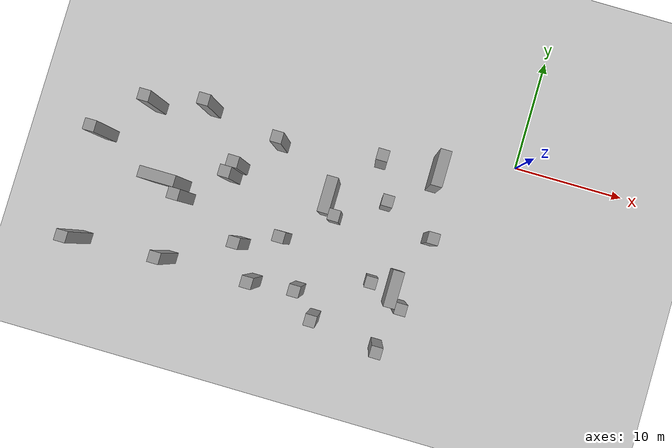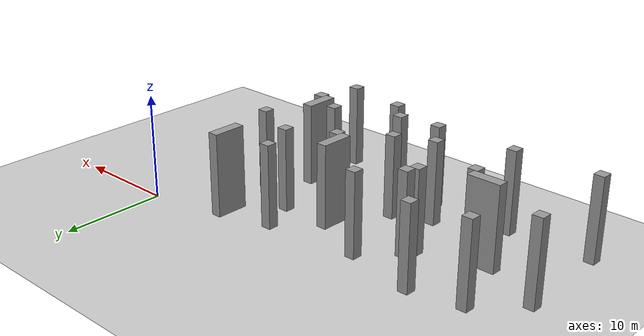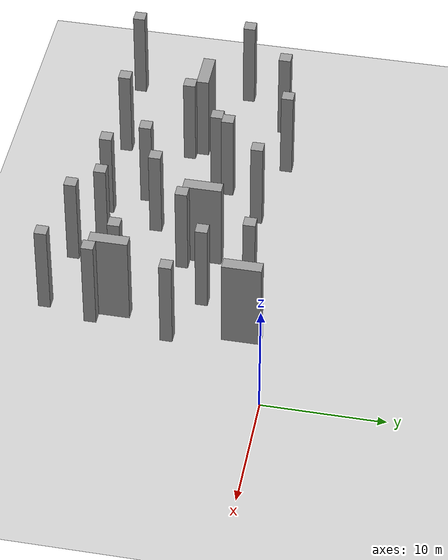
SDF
<sdf version="1.7">
 <world name="default">
  <model name="ground_plane">
   <static>1</static>
   <link name="link">
    <collision name="collision">
     <geometry><plane><normal>0 0 1</normal><size>100 100</size></plane></geometry>
     <surface>
      <contact><collide_bitmask>65535</collide_bitmask></contact>
      <friction><ode><mu>100</mu><mu2>50</mu2></ode></friction>
     </surface>
    </collision>
    <visual name="visual">
     <cast_shadows>0</cast_shadows>
     <geometry><plane><normal>0 0 1</normal><size>100 100</size></plane></geometry>
     <material>
      <script><uri>file://media/materials/scripts/gazebo.material</uri><name>Gazebo/Grey</name></script>
     </material>
    </visual>
   </link>
  </model>
  <model name="unit_box_static_clone_15">
   <link name="link">
    <inertial>
     <mass>1</mass>
     <inertia>
      <ixx>0.166667</ixx>
      <ixy>0</ixy>
      <ixz>0</ixz>
      <iyy>0.166667</iyy>
      <iyz>0</iyz>
      <izz>0.166667</izz>
     </inertia>
    </inertial>
    <visual name="visual">
     <geometry><box><size>1 1 8.00001</size></box></geometry>
     <material>
      <script><name>Gazebo/Grey</name><uri>file://media/materials/scripts/gazebo.material</uri></script>
      <shader type="pixel"/>
     </material>
    </visual>
    <collision name="collision">
     <geometry><box><size>1 1 8.00001</size></box></geometry>
     <surface>
      <friction>
       <ode><mu>1</mu><mu2>1</mu2><fdir1>0 0 0</fdir1><slip1>0</slip1><slip2>0</slip2></ode>
       <torsional>
        <coefficient>1</coefficient>
        <patch_radius>0</patch_radius>
        <surface_radius>0</surface_radius>
        <use_patch_radius>1</use_patch_radius>
        <ode><slip>0</slip></ode>
       </torsional>
      </friction>
      <bounce><restitution_coefficient>0</restitution_coefficient><threshold>1e+06</threshold></bounce>
      <contact>
       <collide_without_contact>0</collide_without_contact>
       <collide_without_contact_bitmask>1</collide_without_contact_bitmask>
       <collide_bitmask>1</collide_bitmask>
       <ode>
        <soft_cfm>0</soft_cfm>
        <soft_erp>0.2</soft_erp>
        <kp>1e+13</kp>
        <kd>1</kd>
        <max_vel>0.01</max_vel>
        <min_depth>0</min_depth>
       </ode>
       <bullet>
        <split_impulse>1</split_impulse>
        <split_impulse_penetration_threshold>-0.01</split_impulse_penetration_threshold>
        <soft_cfm>0</soft_cfm>
        <soft_erp>0.2</soft_erp>
        <kp>1e+13</kp>
        <kd>1</kd>
       </bullet>
      </contact>
     </surface>
    </collision>
   </link>
   <static>1</static>
   <pose>-14.5511 -9 4 0 -0 0</pose>
  </model>
  <model name="unit_box_static_clone_16">
   <link name="link">
    <inertial>
     <mass>1</mass>
     <inertia>
      <ixx>0.166667</ixx>
      <ixy>0</ixy>
      <ixz>0</ixz>
      <iyy>0.166667</iyy>
      <iyz>0</iyz>
      <izz>0.166667</izz>
     </inertia>
    </inertial>
    <visual name="visual">
     <geometry><box><size>1 1 8.00001</size></box></geometry>
     <material>
      <script><name>Gazebo/Grey</name><uri>file://media/materials/scripts/gazebo.material</uri></script>
      <shader type="pixel"/>
     </material>
    </visual>
    <collision name="collision">
     <geometry><box><size>1 1 8.00001</size></box></geometry>
     <surface>
      <friction>
       <ode><mu>1</mu><mu2>1</mu2><fdir1>0 0 0</fdir1><slip1>0</slip1><slip2>0</slip2></ode>
       <torsional>
        <coefficient>1</coefficient>
        <patch_radius>0</patch_radius>
        <surface_radius>0</surface_radius>
        <use_patch_radius>1</use_patch_radius>
        <ode><slip>0</slip></ode>
       </torsional>
      </friction>
      <bounce><restitution_coefficient>0</restitution_coefficient><threshold>1e+06</threshold></bounce>
      <contact>
       <collide_without_contact>0</collide_without_contact>
       <collide_without_contact_bitmask>1</collide_without_contact_bitmask>
       <collide_bitmask>1</collide_bitmask>
       <ode>
        <soft_cfm>0</soft_cfm>
        <soft_erp>0.2</soft_erp>
        <kp>1e+13</kp>
        <kd>1</kd>
        <max_vel>0.01</max_vel>
        <min_depth>0</min_depth>
       </ode>
       <bullet>
        <split_impulse>1</split_impulse>
        <split_impulse_penetration_threshold>-0.01</split_impulse_penetration_threshold>
        <soft_cfm>0</soft_cfm>
        <soft_erp>0.2</soft_erp>
        <kp>1e+13</kp>
        <kd>1</kd>
       </bullet>
      </contact>
     </surface>
    </collision>
   </link>
   <static>1</static>
   <pose>-10.537 -6.5798 4 0 -0 0</pose>
  </model>
  <model name="unit_box_static_clone_26">
   <link name="link">
    <inertial>
     <mass>1</mass>
     <inertia>
      <ixx>0.166667</ixx>
      <ixy>0</ixy>
      <ixz>0</ixz>
      <iyy>0.166667</iyy>
      <iyz>0</iyz>
      <izz>0.166667</izz>
     </inertia>
    </inertial>
    <visual name="visual">
     <geometry><box><size>1 1 8.00001</size></box></geometry>
     <material>
      <script><name>Gazebo/Grey</name><uri>file://media/materials/scripts/gazebo.material</uri></script>
      <shader type="pixel"/>
     </material>
    </visual>
    <collision name="collision">
     <geometry><box><size>1 1 8.00001</size></box></geometry>
     <surface>
      <friction>
       <ode><mu>1</mu><mu2>1</mu2><fdir1>0 0 0</fdir1><slip1>0</slip1><slip2>0</slip2></ode>
       <torsional>
        <coefficient>1</coefficient>
        <patch_radius>0</patch_radius>
        <surface_radius>0</surface_radius>
        <use_patch_radius>1</use_patch_radius>
        <ode><slip>0</slip></ode>
       </torsional>
      </friction>
      <bounce><restitution_coefficient>0</restitution_coefficient><threshold>1e+06</threshold></bounce>
      <contact>
       <collide_without_contact>0</collide_without_contact>
       <collide_without_contact_bitmask>1</collide_without_contact_bitmask>
       <collide_bitmask>1</collide_bitmask>
       <ode>
        <soft_cfm>0</soft_cfm>
        <soft_erp>0.2</soft_erp>
        <kp>1e+13</kp>
        <kd>1</kd>
        <max_vel>0.01</max_vel>
        <min_depth>0</min_depth>
       </ode>
       <bullet>
        <split_impulse>1</split_impulse>
        <split_impulse_penetration_threshold>-0.01</split_impulse_penetration_threshold>
        <soft_cfm>0</soft_cfm>
        <soft_erp>0.2</soft_erp>
        <kp>1e+13</kp>
        <kd>1</kd>
       </bullet>
      </contact>
     </surface>
    </collision>
   </link>
   <static>1</static>
   <pose>-10 -13.5446 4 0 -0 0</pose>
  </model>
  <model name="unit_box_static_clone_27">
   <link name="link">
    <inertial>
     <mass>1</mass>
     <inertia>
      <ixx>0.166667</ixx>
      <ixy>0</ixy>
      <ixz>0</ixz>
      <iyy>0.166667</iyy>
      <iyz>0</iyz>
      <izz>0.166667</izz>
     </inertia>
    </inertial>
    <visual name="visual">
     <geometry><box><size>1 1 8.00001</size></box></geometry>
     <material>
      <script><name>Gazebo/Grey</name><uri>file://media/materials/scripts/gazebo.material</uri></script>
      <shader type="pixel"/>
     </material>
    </visual>
    <collision name="collision">
     <geometry><box><size>1 1 8.00001</size></box></geometry>
     <surface>
      <friction>
       <ode><mu>1</mu><mu2>1</mu2><fdir1>0 0 0</fdir1><slip1>0</slip1><slip2>0</slip2></ode>
       <torsional>
        <coefficient>1</coefficient>
        <patch_radius>0</patch_radius>
        <surface_radius>0</surface_radius>
        <use_patch_radius>1</use_patch_radius>
        <ode><slip>0</slip></ode>
       </torsional>
      </friction>
      <bounce><restitution_coefficient>0</restitution_coefficient><threshold>1e+06</threshold></bounce>
      <contact>
       <collide_without_contact>0</collide_without_contact>
       <collide_without_contact_bitmask>1</collide_without_contact_bitmask>
       <collide_bitmask>1</collide_bitmask>
       <ode>
        <soft_cfm>0</soft_cfm>
        <soft_erp>0.2</soft_erp>
        <kp>1e+13</kp>
        <kd>1</kd>
        <max_vel>0.01</max_vel>
        <min_depth>0</min_depth>
       </ode>
       <bullet>
        <split_impulse>1</split_impulse>
        <split_impulse_penetration_threshold>-0.01</split_impulse_penetration_threshold>
        <soft_cfm>0</soft_cfm>
        <soft_erp>0.2</soft_erp>
        <kp>1e+13</kp>
        <kd>1</kd>
       </bullet>
      </contact>
     </surface>
    </collision>
   </link>
   <static>1</static>
   <pose>-7 -15 4 0 -0 0</pose>
  </model>
  <model name="unit_box_static_clone_33">
   <link name="link">
    <inertial>
     <mass>1</mass>
     <inertia>
      <ixx>0.166667</ixx>
      <ixy>0</ixy>
      <ixz>0</ixz>
      <iyy>0.166667</iyy>
      <iyz>0</iyz>
      <izz>0.166667</izz>
     </inertia>
    </inertial>
    <visual name="visual">
     <geometry><box><size>1 1 8.00001</size></box></geometry>
     <material>
      <script><name>Gazebo/Grey</name><uri>file://media/materials/scripts/gazebo.material</uri></script>
      <shader type="pixel"/>
     </material>
    </visual>
    <collision name="collision">
     <geometry><box><size>1 1 8.00001</size></box></geometry>
     <surface>
      <friction>
       <ode><mu>1</mu><mu2>1</mu2><fdir1>0 0 0</fdir1><slip1>0</slip1><slip2>0</slip2></ode>
       <torsional>
        <coefficient>1</coefficient>
        <patch_radius>0</patch_radius>
        <surface_radius>0</surface_radius>
        <use_patch_radius>1</use_patch_radius>
        <ode><slip>0</slip></ode>
       </torsional>
      </friction>
      <bounce><restitution_coefficient>0</restitution_coefficient><threshold>1e+06</threshold></bounce>
      <contact>
       <collide_without_contact>0</collide_without_contact>
       <collide_without_contact_bitmask>1</collide_without_contact_bitmask>
       <collide_bitmask>1</collide_bitmask>
       <ode>
        <soft_cfm>0</soft_cfm>
        <soft_erp>0.2</soft_erp>
        <kp>1e+13</kp>
        <kd>1</kd>
        <max_vel>0.01</max_vel>
        <min_depth>0</min_depth>
       </ode>
       <bullet>
        <split_impulse>1</split_impulse>
        <split_impulse_penetration_threshold>-0.01</split_impulse_penetration_threshold>
        <soft_cfm>0</soft_cfm>
        <soft_erp>0.2</soft_erp>
        <kp>1e+13</kp>
        <kd>1</kd>
       </bullet>
      </contact>
     </surface>
    </collision>
   </link>
   <static>1</static>
   <pose>-6 -8.55558 4 0 -0 0</pose>
  </model>
  <model name="unit_box_static_clone_69">
   <link name="link">
    <inertial>
     <mass>1</mass>
     <inertia>
      <ixx>0.166667</ixx>
      <ixy>0</ixy>
      <ixz>0</ixz>
      <iyy>0.166667</iyy>
      <iyz>0</iyz>
      <izz>0.166667</izz>
     </inertia>
    </inertial>
    <visual name="visual">
     <geometry><box><size>1 1 8.00001</size></box></geometry>
     <material>
      <script><name>Gazebo/Grey</name><uri>file://media/materials/scripts/gazebo.material</uri></script>
      <shader type="pixel"/>
     </material>
    </visual>
    <collision name="collision">
     <geometry><box><size>1 1 8.00001</size></box></geometry>
     <surface>
      <friction>
       <ode><mu>1</mu><mu2>1</mu2><fdir1>0 0 0</fdir1><slip1>0</slip1><slip2>0</slip2></ode>
       <torsional>
        <coefficient>1</coefficient>
        <patch_radius>0</patch_radius>
        <surface_radius>0</surface_radius>
        <use_patch_radius>1</use_patch_radius>
        <ode><slip>0</slip></ode>
       </torsional>
      </friction>
      <bounce><restitution_coefficient>0</restitution_coefficient><threshold>1e+06</threshold></bounce>
      <contact>
       <collide_without_contact>0</collide_without_contact>
       <collide_without_contact_bitmask>1</collide_without_contact_bitmask>
       <collide_bitmask>1</collide_bitmask>
       <ode>
        <soft_cfm>0</soft_cfm>
        <soft_erp>0.2</soft_erp>
        <kp>1e+13</kp>
        <kd>1</kd>
        <max_vel>0.01</max_vel>
        <min_depth>0</min_depth>
       </ode>
       <bullet>
        <split_impulse>1</split_impulse>
        <split_impulse_penetration_threshold>-0.01</split_impulse_penetration_threshold>
        <soft_cfm>0</soft_cfm>
        <soft_erp>0.2</soft_erp>
        <kp>1e+13</kp>
        <kd>1</kd>
       </bullet>
      </contact>
     </surface>
    </collision>
   </link>
   <static>1</static>
   <pose>-21 -4 4 0 -0 0</pose>
  </model>
  <model name="unit_box_static_clone_70">
   <link name="link">
    <inertial>
     <mass>1</mass>
     <inertia>
      <ixx>0.166667</ixx>
      <ixy>0</ixy>
      <ixz>0</ixz>
      <iyy>0.166667</iyy>
      <iyz>0</iyz>
      <izz>0.166667</izz>
     </inertia>
    </inertial>
    <visual name="visual">
     <geometry><box><size>1 1 8.00001</size></box></geometry>
     <material>
      <script><name>Gazebo/Grey</name><uri>file://media/materials/scripts/gazebo.material</uri></script>
      <shader type="pixel"/>
     </material>
    </visual>
    <collision name="collision">
     <geometry><box><size>1 1 8.00001</size></box></geometry>
     <surface>
      <friction>
       <ode><mu>1</mu><mu2>1</mu2><fdir1>0 0 0</fdir1><slip1>0</slip1><slip2>0</slip2></ode>
       <torsional>
        <coefficient>1</coefficient>
        <patch_radius>0</patch_radius>
        <surface_radius>0</surface_radius>
        <use_patch_radius>1</use_patch_radius>
        <ode><slip>0</slip></ode>
       </torsional>
      </friction>
      <bounce><restitution_coefficient>0</restitution_coefficient><threshold>1e+06</threshold></bounce>
      <contact>
       <collide_without_contact>0</collide_without_contact>
       <collide_without_contact_bitmask>1</collide_without_contact_bitmask>
       <collide_bitmask>1</collide_bitmask>
       <ode>
        <soft_cfm>0</soft_cfm>
        <soft_erp>0.2</soft_erp>
        <kp>1e+13</kp>
        <kd>1</kd>
        <max_vel>0.01</max_vel>
        <min_depth>0</min_depth>
       </ode>
       <bullet>
        <split_impulse>1</split_impulse>
        <split_impulse_penetration_threshold>-0.01</split_impulse_penetration_threshold>
        <soft_cfm>0</soft_cfm>
        <soft_erp>0.2</soft_erp>
        <kp>1e+13</kp>
        <kd>1</kd>
       </bullet>
      </contact>
     </surface>
    </collision>
   </link>
   <static>1</static>
   <pose>-8 -19 4 0 -0 0</pose>
  </model>
  <model name="unit_box_static_clone_15_clone">
   <link name="link">
    <inertial>
     <mass>1</mass>
     <inertia>
      <ixx>0.166667</ixx>
      <ixy>0</ixy>
      <ixz>0</ixz>
      <iyy>0.166667</iyy>
      <iyz>0</iyz>
      <izz>0.166667</izz>
     </inertia>
    </inertial>
    <visual name="visual">
     <geometry><box><size>1 1 8.00001</size></box></geometry>
     <material>
      <script><name>Gazebo/Grey</name><uri>file://media/materials/scripts/gazebo.material</uri></script>
      <shader type="pixel"/>
     </material>
    </visual>
    <collision name="collision">
     <geometry><box><size>1 1 8.00001</size></box></geometry>
     <surface>
      <friction>
       <ode><mu>1</mu><mu2>1</mu2><fdir1>0 0 0</fdir1><slip1>0</slip1><slip2>0</slip2></ode>
       <torsional>
        <coefficient>1</coefficient>
        <patch_radius>0</patch_radius>
        <surface_radius>0</surface_radius>
        <use_patch_radius>1</use_patch_radius>
        <ode><slip>0</slip></ode>
       </torsional>
      </friction>
      <bounce><restitution_coefficient>0</restitution_coefficient><threshold>1e+06</threshold></bounce>
      <contact>
       <collide_without_contact>0</collide_without_contact>
       <collide_without_contact_bitmask>1</collide_without_contact_bitmask>
       <collide_bitmask>1</collide_bitmask>
       <ode>
        <soft_cfm>0</soft_cfm>
        <soft_erp>0.2</soft_erp>
        <kp>1e+13</kp>
        <kd>1</kd>
        <max_vel>0.01</max_vel>
        <min_depth>0</min_depth>
       </ode>
       <bullet>
        <split_impulse>1</split_impulse>
        <split_impulse_penetration_threshold>-0.01</split_impulse_penetration_threshold>
        <soft_cfm>0</soft_cfm>
        <soft_erp>0.2</soft_erp>
        <kp>1e+13</kp>
        <kd>1</kd>
       </bullet>
      </contact>
     </surface>
    </collision>
   </link>
   <static>1</static>
   <pose>-24 -7 4 0 -0 0</pose>
  </model>
  <model name="unit_box_static_clone_15_clone_0">
   <link name="link">
    <inertial>
     <mass>1</mass>
     <inertia>
      <ixx>0.166667</ixx>
      <ixy>0</ixy>
      <ixz>0</ixz>
      <iyy>0.166667</iyy>
      <iyz>0</iyz>
      <izz>0.166667</izz>
     </inertia>
    </inertial>
    <visual name="visual">
     <geometry><box><size>1 1 8.00001</size></box></geometry>
     <material>
      <script><name>Gazebo/Grey</name><uri>file://media/materials/scripts/gazebo.material</uri></script>
      <shader type="pixel"/>
     </material>
    </visual>
    <collision name="collision">
     <geometry><box><size>1 1 8.00001</size></box></geometry>
     <surface>
      <friction>
       <ode><mu>1</mu><mu2>1</mu2><fdir1>0 0 0</fdir1><slip1>0</slip1><slip2>0</slip2></ode>
       <torsional>
        <coefficient>1</coefficient>
        <patch_radius>0</patch_radius>
        <surface_radius>0</surface_radius>
        <use_patch_radius>1</use_patch_radius>
        <ode><slip>0</slip></ode>
       </torsional>
      </friction>
      <bounce><restitution_coefficient>0</restitution_coefficient><threshold>1e+06</threshold></bounce>
      <contact>
       <collide_without_contact>0</collide_without_contact>
       <collide_without_contact_bitmask>1</collide_without_contact_bitmask>
       <collide_bitmask>1</collide_bitmask>
       <ode>
        <soft_cfm>0</soft_cfm>
        <soft_erp>0.2</soft_erp>
        <kp>1e+13</kp>
        <kd>1</kd>
        <max_vel>0.01</max_vel>
        <min_depth>0</min_depth>
       </ode>
       <bullet>
        <split_impulse>1</split_impulse>
        <split_impulse_penetration_threshold>-0.01</split_impulse_penetration_threshold>
        <soft_cfm>0</soft_cfm>
        <soft_erp>0.2</soft_erp>
        <kp>1e+13</kp>
        <kd>1</kd>
       </bullet>
      </contact>
     </surface>
    </collision>
   </link>
   <static>1</static>
   <pose>-24.4054 -8 4 0 -0 0</pose>
  </model>
  <model name="unit_box_static_clone_15_clone_2">
   <link name="link">
    <inertial>
     <mass>1</mass>
     <inertia>
      <ixx>0.166667</ixx>
      <ixy>0</ixy>
      <ixz>0</ixz>
      <iyy>0.166667</iyy>
      <iyz>0</iyz>
      <izz>0.166667</izz>
     </inertia>
    </inertial>
    <visual name="visual">
     <geometry><box><size>1 1 8.00001</size></box></geometry>
     <material>
      <script><name>Gazebo/Grey</name><uri>file://media/materials/scripts/gazebo.material</uri></script>
      <shader type="pixel"/>
     </material>
    </visual>
    <collision name="collision">
     <geometry><box><size>1 1 8.00001</size></box></geometry>
     <surface>
      <friction>
       <ode><mu>1</mu><mu2>1</mu2><fdir1>0 0 0</fdir1><slip1>0</slip1><slip2>0</slip2></ode>
       <torsional>
        <coefficient>1</coefficient>
        <patch_radius>0</patch_radius>
        <surface_radius>0</surface_radius>
        <use_patch_radius>1</use_patch_radius>
        <ode><slip>0</slip></ode>
       </torsional>
      </friction>
      <bounce><restitution_coefficient>0</restitution_coefficient><threshold>1e+06</threshold></bounce>
      <contact>
       <collide_without_contact>0</collide_without_contact>
       <collide_without_contact_bitmask>1</collide_without_contact_bitmask>
       <collide_bitmask>1</collide_bitmask>
       <ode>
        <soft_cfm>0</soft_cfm>
        <soft_erp>0.2</soft_erp>
        <kp>1e+13</kp>
        <kd>1</kd>
        <max_vel>0.01</max_vel>
        <min_depth>0</min_depth>
       </ode>
       <bullet>
        <split_impulse>1</split_impulse>
        <split_impulse_penetration_threshold>-0.01</split_impulse_penetration_threshold>
        <soft_cfm>0</soft_cfm>
        <soft_erp>0.2</soft_erp>
        <kp>1e+13</kp>
        <kd>1</kd>
       </bullet>
      </contact>
     </surface>
    </collision>
   </link>
   <static>1</static>
   <pose>-14 -18 4 0 -0 0</pose>
  </model>
  <model name="unit_box_static_clone_15_clone_3">
   <link name="link">
    <inertial>
     <mass>1</mass>
     <inertia>
      <ixx>0.166667</ixx>
      <ixy>0</ixy>
      <ixz>0</ixz>
      <iyy>0.166667</iyy>
      <iyz>0</iyz>
      <izz>0.166667</izz>
     </inertia>
    </inertial>
    <visual name="visual">
     <geometry><box><size>1 1 8.00001</size></box></geometry>
     <material>
      <script><name>Gazebo/Grey</name><uri>file://media/materials/scripts/gazebo.material</uri></script>
      <shader type="pixel"/>
     </material>
    </visual>
    <collision name="collision">
     <geometry><box><size>1 1 8.00001</size></box></geometry>
     <surface>
      <friction>
       <ode><mu>1</mu><mu2>1</mu2><fdir1>0 0 0</fdir1><slip1>0</slip1><slip2>0</slip2></ode>
       <torsional>
        <coefficient>1</coefficient>
        <patch_radius>0</patch_radius>
        <surface_radius>0</surface_radius>
        <use_patch_radius>1</use_patch_radius>
        <ode><slip>0</slip></ode>
       </torsional>
      </friction>
      <bounce><restitution_coefficient>0</restitution_coefficient><threshold>1e+06</threshold></bounce>
      <contact>
       <collide_without_contact>0</collide_without_contact>
       <collide_without_contact_bitmask>1</collide_without_contact_bitmask>
       <collide_bitmask>1</collide_bitmask>
       <ode>
        <soft_cfm>0</soft_cfm>
        <soft_erp>0.2</soft_erp>
        <kp>1e+13</kp>
        <kd>1</kd>
        <max_vel>0.01</max_vel>
        <min_depth>0</min_depth>
       </ode>
       <bullet>
        <split_impulse>1</split_impulse>
        <split_impulse_penetration_threshold>-0.01</split_impulse_penetration_threshold>
        <soft_cfm>0</soft_cfm>
        <soft_erp>0.2</soft_erp>
        <kp>1e+13</kp>
        <kd>1</kd>
       </bullet>
      </contact>
     </surface>
    </collision>
   </link>
   <static>1</static>
   <pose>-16 -16 4 0 -0 0</pose>
  </model>
  <model name="unit_box_static_clone_15_clone_4">
   <link name="link">
    <inertial>
     <mass>1</mass>
     <inertia>
      <ixx>0.166667</ixx>
      <ixy>0</ixy>
      <ixz>0</ixz>
      <iyy>0.166667</iyy>
      <iyz>0</iyz>
      <izz>0.166667</izz>
     </inertia>
    </inertial>
    <visual name="visual">
     <geometry><box><size>1 1 8.00001</size></box></geometry>
     <material>
      <script><name>Gazebo/Grey</name><uri>file://media/materials/scripts/gazebo.material</uri></script>
      <shader type="pixel"/>
     </material>
    </visual>
    <collision name="collision">
     <geometry><box><size>1 1 8.00001</size></box></geometry>
     <surface>
      <friction>
       <ode><mu>1</mu><mu2>1</mu2><fdir1>0 0 0</fdir1><slip1>0</slip1><slip2>0</slip2></ode>
       <torsional>
        <coefficient>1</coefficient>
        <patch_radius>0</patch_radius>
        <surface_radius>0</surface_radius>
        <use_patch_radius>1</use_patch_radius>
        <ode><slip>0</slip></ode>
       </torsional>
      </friction>
      <bounce><restitution_coefficient>0</restitution_coefficient><threshold>1e+06</threshold></bounce>
      <contact>
       <collide_without_contact>0</collide_without_contact>
       <collide_without_contact_bitmask>1</collide_without_contact_bitmask>
       <collide_bitmask>1</collide_bitmask>
       <ode>
        <soft_cfm>0</soft_cfm>
        <soft_erp>0.2</soft_erp>
        <kp>1e+13</kp>
        <kd>1</kd>
        <max_vel>0.01</max_vel>
        <min_depth>0</min_depth>
       </ode>
       <bullet>
        <split_impulse>1</split_impulse>
        <split_impulse_penetration_threshold>-0.01</split_impulse_penetration_threshold>
        <soft_cfm>0</soft_cfm>
        <soft_erp>0.2</soft_erp>
        <kp>1e+13</kp>
        <kd>1</kd>
       </bullet>
      </contact>
     </surface>
    </collision>
   </link>
   <static>1</static>
   <pose>-18.4963 -12 4 0 -0 0</pose>
  </model>
  <model name="unit_box_static_clone_15_clone_5">
   <link name="link">
    <inertial>
     <mass>1</mass>
     <inertia>
      <ixx>0.166667</ixx>
      <ixy>0</ixy>
      <ixz>0</ixz>
      <iyy>0.166667</iyy>
      <iyz>0</iyz>
      <izz>0.166667</izz>
     </inertia>
    </inertial>
    <visual name="visual">
     <geometry><box><size>1 1 8.00001</size></box></geometry>
     <material>
      <script><name>Gazebo/Grey</name><uri>file://media/materials/scripts/gazebo.material</uri></script>
      <shader type="pixel"/>
     </material>
    </visual>
    <collision name="collision">
     <geometry><box><size>1 1 8.00001</size></box></geometry>
     <surface>
      <friction>
       <ode><mu>1</mu><mu2>1</mu2><fdir1>0 0 0</fdir1><slip1>0</slip1><slip2>0</slip2></ode>
       <torsional>
        <coefficient>1</coefficient>
        <patch_radius>0</patch_radius>
        <surface_radius>0</surface_radius>
        <use_patch_radius>1</use_patch_radius>
        <ode><slip>0</slip></ode>
       </torsional>
      </friction>
      <bounce><restitution_coefficient>0</restitution_coefficient><threshold>1e+06</threshold></bounce>
      <contact>
       <collide_without_contact>0</collide_without_contact>
       <collide_without_contact_bitmask>1</collide_without_contact_bitmask>
       <collide_bitmask>1</collide_bitmask>
       <ode>
        <soft_cfm>0</soft_cfm>
        <soft_erp>0.2</soft_erp>
        <kp>1e+13</kp>
        <kd>1</kd>
        <max_vel>0.01</max_vel>
        <min_depth>0</min_depth>
       </ode>
       <bullet>
        <split_impulse>1</split_impulse>
        <split_impulse_penetration_threshold>-0.01</split_impulse_penetration_threshold>
        <soft_cfm>0</soft_cfm>
        <soft_erp>0.2</soft_erp>
        <kp>1e+13</kp>
        <kd>1</kd>
       </bullet>
      </contact>
     </surface>
    </collision>
   </link>
   <static>1</static>
   <pose>-22 -13.5196 4 0 -0 0</pose>
  </model>
  <model name="unit_box_static_clone_37_clone">
   <link name="link">
    <inertial>
     <mass>1</mass>
     <inertia>
      <ixx>0.166667</ixx>
      <ixy>0</ixy>
      <ixz>0</ixz>
      <iyy>0.166667</iyy>
      <iyz>0</iyz>
      <izz>0.166667</izz>
     </inertia>
    </inertial>
    <visual name="visual">
     <geometry><box><size>1 3.16921 8.00001</size></box></geometry>
     <material>
      <script><name>Gazebo/Grey</name><uri>file://media/materials/scripts/gazebo.material</uri></script>
      <shader type="pixel"/>
     </material>
    </visual>
    <collision name="collision">
     <geometry><box><size>1 3.16921 8.00001</size></box></geometry>
     <surface>
      <friction>
       <ode><mu>1</mu><mu2>1</mu2><fdir1>0 0 0</fdir1><slip1>0</slip1><slip2>0</slip2></ode>
       <torsional>
        <coefficient>1</coefficient>
        <patch_radius>0</patch_radius>
        <surface_radius>0</surface_radius>
        <use_patch_radius>1</use_patch_radius>
        <ode><slip>0</slip></ode>
       </torsional>
      </friction>
      <bounce><restitution_coefficient>0</restitution_coefficient><threshold>1e+06</threshold></bounce>
      <contact>
       <collide_without_contact>0</collide_without_contact>
       <collide_without_contact_bitmask>1</collide_without_contact_bitmask>
       <collide_bitmask>1</collide_bitmask>
       <ode>
        <soft_cfm>0</soft_cfm>
        <soft_erp>0.2</soft_erp>
        <kp>1e+13</kp>
        <kd>1</kd>
        <max_vel>0.01</max_vel>
        <min_depth>0</min_depth>
       </ode>
       <bullet>
        <split_impulse>1</split_impulse>
        <split_impulse_penetration_threshold>-0.01</split_impulse_penetration_threshold>
        <soft_cfm>0</soft_cfm>
        <soft_erp>0.2</soft_erp>
        <kp>1e+13</kp>
        <kd>1</kd>
       </bullet>
      </contact>
     </surface>
    </collision>
   </link>
   <static>1</static>
   <pose>-6.98283 -2.6849 4 0 -0 0</pose>
  </model>
  <model name="unit_box_static_clone_37_clone_4">
   <link name="link">
    <inertial>
     <mass>1</mass>
     <inertia>
      <ixx>0.166667</ixx>
      <ixy>0</ixy>
      <ixz>0</ixz>
      <iyy>0.166667</iyy>
      <iyz>0</iyz>
      <izz>0.166667</izz>
     </inertia>
    </inertial>
    <visual name="visual">
     <geometry><box><size>1 3.16921 8.00001</size></box></geometry>
     <material>
      <script><name>Gazebo/Grey</name><uri>file://media/materials/scripts/gazebo.material</uri></script>
      <shader type="pixel"/>
     </material>
    </visual>
    <collision name="collision">
     <geometry><box><size>1 3.16921 8.00001</size></box></geometry>
     <surface>
      <friction>
       <ode><mu>1</mu><mu2>1</mu2><fdir1>0 0 0</fdir1><slip1>0</slip1><slip2>0</slip2></ode>
       <torsional>
        <coefficient>1</coefficient>
        <patch_radius>0</patch_radius>
        <surface_radius>0</surface_radius>
        <use_patch_radius>1</use_patch_radius>
        <ode><slip>0</slip></ode>
       </torsional>
      </friction>
      <bounce><restitution_coefficient>0</restitution_coefficient><threshold>1e+06</threshold></bounce>
      <contact>
       <collide_without_contact>0</collide_without_contact>
       <collide_without_contact_bitmask>1</collide_without_contact_bitmask>
       <collide_bitmask>1</collide_bitmask>
       <ode>
        <soft_cfm>0</soft_cfm>
        <soft_erp>0.2</soft_erp>
        <kp>1e+13</kp>
        <kd>1</kd>
        <max_vel>0.01</max_vel>
        <min_depth>0</min_depth>
       </ode>
       <bullet>
        <split_impulse>1</split_impulse>
        <split_impulse_penetration_threshold>-0.01</split_impulse_penetration_threshold>
        <soft_cfm>0</soft_cfm>
        <soft_erp>0.2</soft_erp>
        <kp>1e+13</kp>
        <kd>1</kd>
       </bullet>
      </contact>
     </surface>
    </collision>
   </link>
   <static>1</static>
   <pose>-15.5283 -7.4841 4 0 -0 0</pose>
  </model>
  <model name="unit_box_static_clone_37_clone_8">
   <link name="link">
    <inertial>
     <mass>1</mass>
     <inertia>
      <ixx>0.166667</ixx>
      <ixy>0</ixy>
      <ixz>0</ixz>
      <iyy>0.166667</iyy>
      <iyz>0</iyz>
      <izz>0.166667</izz>
     </inertia>
    </inertial>
    <visual name="visual">
     <geometry><box><size>1 3.16921 8.00001</size></box></geometry>
     <material>
      <script><name>Gazebo/Grey</name><uri>file://media/materials/scripts/gazebo.material</uri></script>
      <shader type="pixel"/>
     </material>
    </visual>
    <collision name="collision">
     <geometry><box><size>1 3.16921 8.00001</size></box></geometry>
     <surface>
      <friction>
       <ode><mu>1</mu><mu2>1</mu2><fdir1>0 0 0</fdir1><slip1>0</slip1><slip2>0</slip2></ode>
       <torsional>
        <coefficient>1</coefficient>
        <patch_radius>0</patch_radius>
        <surface_radius>0</surface_radius>
        <use_patch_radius>1</use_patch_radius>
        <ode><slip>0</slip></ode>
       </torsional>
      </friction>
      <bounce><restitution_coefficient>0</restitution_coefficient><threshold>1e+06</threshold></bounce>
      <contact>
       <collide_without_contact>0</collide_without_contact>
       <collide_without_contact_bitmask>1</collide_without_contact_bitmask>
       <collide_bitmask>1</collide_bitmask>
       <ode>
        <soft_cfm>0</soft_cfm>
        <soft_erp>0.2</soft_erp>
        <kp>1e+13</kp>
        <kd>1</kd>
        <max_vel>0.01</max_vel>
        <min_depth>0</min_depth>
       </ode>
       <bullet>
        <split_impulse>1</split_impulse>
        <split_impulse_penetration_threshold>-0.01</split_impulse_penetration_threshold>
        <soft_cfm>0</soft_cfm>
        <soft_erp>0.2</soft_erp>
        <kp>1e+13</kp>
        <kd>1</kd>
       </bullet>
      </contact>
     </surface>
    </collision>
   </link>
   <static>1</static>
   <pose>-8 -13.5511 4 0 -0 0</pose>
  </model>
  <model name="unit_box_static_clone_35_clone_26">
   <link name="link">
    <inertial>
     <mass>1</mass>
     <inertia>
      <ixx>0.166667</ixx>
      <ixy>0</ixy>
      <ixz>0</ixz>
      <iyy>0.166667</iyy>
      <iyz>0</iyz>
      <izz>0.166667</izz>
     </inertia>
    </inertial>
    <visual name="visual">
     <geometry><box><size>1 1 8.00001</size></box></geometry>
     <material>
      <script><name>Gazebo/Grey</name><uri>file://media/materials/scripts/gazebo.material</uri></script>
      <shader type="pixel"/>
     </material>
    </visual>
    <collision name="collision">
     <geometry><box><size>1 1 8.00001</size></box></geometry>
     <surface>
      <friction>
       <ode><mu>1</mu><mu2>1</mu2><fdir1>0 0 0</fdir1><slip1>0</slip1><slip2>0</slip2></ode>
       <torsional>
        <coefficient>1</coefficient>
        <patch_radius>0</patch_radius>
        <surface_radius>0</surface_radius>
        <use_patch_radius>1</use_patch_radius>
        <ode><slip>0</slip></ode>
       </torsional>
      </friction>
      <bounce><restitution_coefficient>0</restitution_coefficient><threshold>1e+06</threshold></bounce>
      <contact>
       <collide_without_contact>0</collide_without_contact>
       <collide_without_contact_bitmask>1</collide_without_contact_bitmask>
       <collide_bitmask>1</collide_bitmask>
       <ode>
        <soft_cfm>0</soft_cfm>
        <soft_erp>0.2</soft_erp>
        <kp>1e+13</kp>
        <kd>1</kd>
        <max_vel>0.01</max_vel>
        <min_depth>0</min_depth>
       </ode>
       <bullet>
        <split_impulse>1</split_impulse>
        <split_impulse_penetration_threshold>-0.01</split_impulse_penetration_threshold>
        <soft_cfm>0</soft_cfm>
        <soft_erp>0.2</soft_erp>
        <kp>1e+13</kp>
        <kd>1</kd>
       </bullet>
      </contact>
     </surface>
    </collision>
   </link>
   <static>1</static>
   <pose>-36 -17 4 0 -0 0</pose>
  </model>
  <model name="unit_box_static_clone_35_clone_27">
   <link name="link">
    <inertial>
     <mass>1</mass>
     <inertia>
      <ixx>0.166667</ixx>
      <ixy>0</ixy>
      <ixz>0</ixz>
      <iyy>0.166667</iyy>
      <iyz>0</iyz>
      <izz>0.166667</izz>
     </inertia>
    </inertial>
    <visual name="visual">
     <geometry><box><size>1 1 8.00001</size></box></geometry>
     <material>
      <script><name>Gazebo/Grey</name><uri>file://media/materials/scripts/gazebo.material</uri></script>
      <shader type="pixel"/>
     </material>
    </visual>
    <collision name="collision">
     <geometry><box><size>1 1 8.00001</size></box></geometry>
     <surface>
      <friction>
       <ode><mu>1</mu><mu2>1</mu2><fdir1>0 0 0</fdir1><slip1>0</slip1><slip2>0</slip2></ode>
       <torsional>
        <coefficient>1</coefficient>
        <patch_radius>0</patch_radius>
        <surface_radius>0</surface_radius>
        <use_patch_radius>1</use_patch_radius>
        <ode><slip>0</slip></ode>
       </torsional>
      </friction>
      <bounce><restitution_coefficient>0</restitution_coefficient><threshold>1e+06</threshold></bounce>
      <contact>
       <collide_without_contact>0</collide_without_contact>
       <collide_without_contact_bitmask>1</collide_without_contact_bitmask>
       <collide_bitmask>1</collide_bitmask>
       <ode>
        <soft_cfm>0</soft_cfm>
        <soft_erp>0.2</soft_erp>
        <kp>1e+13</kp>
        <kd>1</kd>
        <max_vel>0.01</max_vel>
        <min_depth>0</min_depth>
       </ode>
       <bullet>
        <split_impulse>1</split_impulse>
        <split_impulse_penetration_threshold>-0.01</split_impulse_penetration_threshold>
        <soft_cfm>0</soft_cfm>
        <soft_erp>0.2</soft_erp>
        <kp>1e+13</kp>
        <kd>1</kd>
       </bullet>
      </contact>
     </surface>
    </collision>
   </link>
   <static>1</static>
   <pose>-20 -16.4184 4 0 -0 0</pose>
  </model>
  <model name="unit_box_static_clone_35_clone_28">
   <link name="link">
    <inertial>
     <mass>1</mass>
     <inertia>
      <ixx>0.166667</ixx>
      <ixy>0</ixy>
      <ixz>0</ixz>
      <iyy>0.166667</iyy>
      <iyz>0</iyz>
      <izz>0.166667</izz>
     </inertia>
    </inertial>
    <visual name="visual">
     <geometry><box><size>1 1 8.00001</size></box></geometry>
     <material>
      <script><name>Gazebo/Grey</name><uri>file://media/materials/scripts/gazebo.material</uri></script>
      <shader type="pixel"/>
     </material>
    </visual>
    <collision name="collision">
     <geometry><box><size>1 1 8.00001</size></box></geometry>
     <surface>
      <friction>
       <ode><mu>1</mu><mu2>1</mu2><fdir1>0 0 0</fdir1><slip1>0</slip1><slip2>0</slip2></ode>
       <torsional>
        <coefficient>1</coefficient>
        <patch_radius>0</patch_radius>
        <surface_radius>0</surface_radius>
        <use_patch_radius>1</use_patch_radius>
        <ode><slip>0</slip></ode>
       </torsional>
      </friction>
      <bounce><restitution_coefficient>0</restitution_coefficient><threshold>1e+06</threshold></bounce>
      <contact>
       <collide_without_contact>0</collide_without_contact>
       <collide_without_contact_bitmask>1</collide_without_contact_bitmask>
       <collide_bitmask>1</collide_bitmask>
       <ode>
        <soft_cfm>0</soft_cfm>
        <soft_erp>0.2</soft_erp>
        <kp>1e+13</kp>
        <kd>1</kd>
        <max_vel>0.01</max_vel>
        <min_depth>0</min_depth>
       </ode>
       <bullet>
        <split_impulse>1</split_impulse>
        <split_impulse_penetration_threshold>-0.01</split_impulse_penetration_threshold>
        <soft_cfm>0</soft_cfm>
        <soft_erp>0.2</soft_erp>
        <kp>1e+13</kp>
        <kd>1</kd>
       </bullet>
      </contact>
     </surface>
    </collision>
   </link>
   <static>1</static>
   <pose>-28 -16.5627 4 0 -0 0</pose>
  </model>
  <model name="unit_box_static_clone_35_clone_29">
   <link name="link">
    <inertial>
     <mass>1</mass>
     <inertia>
      <ixx>0.166667</ixx>
      <ixy>0</ixy>
      <ixz>0</ixz>
      <iyy>0.166667</iyy>
      <iyz>0</iyz>
      <izz>0.166667</izz>
     </inertia>
    </inertial>
    <visual name="visual">
     <geometry><box><size>1 1 8.00001</size></box></geometry>
     <material>
      <script><name>Gazebo/Grey</name><uri>file://media/materials/scripts/gazebo.material</uri></script>
      <shader type="pixel"/>
     </material>
    </visual>
    <collision name="collision">
     <geometry><box><size>1 1 8.00001</size></box></geometry>
     <surface>
      <friction>
       <ode><mu>1</mu><mu2>1</mu2><fdir1>0 0 0</fdir1><slip1>0</slip1><slip2>0</slip2></ode>
       <torsional>
        <coefficient>1</coefficient>
        <patch_radius>0</patch_radius>
        <surface_radius>0</surface_radius>
        <use_patch_radius>1</use_patch_radius>
        <ode><slip>0</slip></ode>
       </torsional>
      </friction>
      <bounce><restitution_coefficient>0</restitution_coefficient><threshold>1e+06</threshold></bounce>
      <contact>
       <collide_without_contact>0</collide_without_contact>
       <collide_without_contact_bitmask>1</collide_without_contact_bitmask>
       <collide_bitmask>1</collide_bitmask>
       <ode>
        <soft_cfm>0</soft_cfm>
        <soft_erp>0.2</soft_erp>
        <kp>1e+13</kp>
        <kd>1</kd>
        <max_vel>0.01</max_vel>
        <min_depth>0</min_depth>
       </ode>
       <bullet>
        <split_impulse>1</split_impulse>
        <split_impulse_penetration_threshold>-0.01</split_impulse_penetration_threshold>
        <soft_cfm>0</soft_cfm>
        <soft_erp>0.2</soft_erp>
        <kp>1e+13</kp>
        <kd>1</kd>
       </bullet>
      </contact>
     </surface>
    </collision>
   </link>
   <static>1</static>
   <pose>-28 -11 4 0 -0 0</pose>
  </model>
  <model name="unit_box_static_clone_35_clone_36">
   <link name="link">
    <inertial>
     <mass>1</mass>
     <inertia>
      <ixx>0.166667</ixx>
      <ixy>0</ixy>
      <ixz>0</ixz>
      <iyy>0.166667</iyy>
      <iyz>0</iyz>
      <izz>0.166667</izz>
     </inertia>
    </inertial>
    <visual name="visual">
     <geometry><box><size>1 1 8.00001</size></box></geometry>
     <material>
      <script><name>Gazebo/Grey</name><uri>file://media/materials/scripts/gazebo.material</uri></script>
      <shader type="pixel"/>
     </material>
    </visual>
    <collision name="collision">
     <geometry><box><size>1 1 8.00001</size></box></geometry>
     <surface>
      <friction>
       <ode><mu>1</mu><mu2>1</mu2><fdir1>0 0 0</fdir1><slip1>0</slip1><slip2>0</slip2></ode>
       <torsional>
        <coefficient>1</coefficient>
        <patch_radius>0</patch_radius>
        <surface_radius>0</surface_radius>
        <use_patch_radius>1</use_patch_radius>
        <ode><slip>0</slip></ode>
       </torsional>
      </friction>
      <bounce><restitution_coefficient>0</restitution_coefficient><threshold>1e+06</threshold></bounce>
      <contact>
       <collide_without_contact>0</collide_without_contact>
       <collide_without_contact_bitmask>1</collide_without_contact_bitmask>
       <collide_bitmask>1</collide_bitmask>
       <ode>
        <soft_cfm>0</soft_cfm>
        <soft_erp>0.2</soft_erp>
        <kp>1e+13</kp>
        <kd>1</kd>
        <max_vel>0.01</max_vel>
        <min_depth>0</min_depth>
       </ode>
       <bullet>
        <split_impulse>1</split_impulse>
        <split_impulse_penetration_threshold>-0.01</split_impulse_penetration_threshold>
        <soft_cfm>0</soft_cfm>
        <soft_erp>0.2</soft_erp>
        <kp>1e+13</kp>
        <kd>1</kd>
       </bullet>
      </contact>
     </surface>
    </collision>
   </link>
   <static>1</static>
   <pose>-12 -3 4 0 -0 0</pose>
  </model>
  <model name="unit_box_static_clone_35_clone_39">
   <link name="link">
    <inertial>
     <mass>1</mass>
     <inertia>
      <ixx>0.166667</ixx>
      <ixy>0</ixy>
      <ixz>0</ixz>
      <iyy>0.166667</iyy>
      <iyz>0</iyz>
      <izz>0.166667</izz>
     </inertia>
    </inertial>
    <visual name="visual">
     <geometry><box><size>1 1 8.00001</size></box></geometry>
     <material>
      <script><name>Gazebo/Grey</name><uri>file://media/materials/scripts/gazebo.material</uri></script>
      <shader type="pixel"/>
     </material>
    </visual>
    <collision name="collision">
     <geometry><box><size>1 1 8.00001</size></box></geometry>
     <surface>
      <friction>
       <ode><mu>1</mu><mu2>1</mu2><fdir1>0 0 0</fdir1><slip1>0</slip1><slip2>0</slip2></ode>
       <torsional>
        <coefficient>1</coefficient>
        <patch_radius>0</patch_radius>
        <surface_radius>0</surface_radius>
        <use_patch_radius>1</use_patch_radius>
        <ode><slip>0</slip></ode>
       </torsional>
      </friction>
      <bounce><restitution_coefficient>0</restitution_coefficient><threshold>1e+06</threshold></bounce>
      <contact>
       <collide_without_contact>0</collide_without_contact>
       <collide_without_contact_bitmask>1</collide_without_contact_bitmask>
       <collide_bitmask>1</collide_bitmask>
       <ode>
        <soft_cfm>0</soft_cfm>
        <soft_erp>0.2</soft_erp>
        <kp>1e+13</kp>
        <kd>1</kd>
        <max_vel>0.01</max_vel>
        <min_depth>0</min_depth>
       </ode>
       <bullet>
        <split_impulse>1</split_impulse>
        <split_impulse_penetration_threshold>-0.01</split_impulse_penetration_threshold>
        <soft_cfm>0</soft_cfm>
        <soft_erp>0.2</soft_erp>
        <kp>1e+13</kp>
        <kd>1</kd>
       </bullet>
      </contact>
     </surface>
    </collision>
   </link>
   <static>1</static>
   <pose>-36.4135 -7.41197 4 0 -0 0</pose>
  </model>
  <model name="unit_box_static_clone_37_clone_4_clone_clone_0">
   <link name="link">
    <inertial>
     <mass>1</mass>
     <inertia>
      <ixx>0.166667</ixx>
      <ixy>0</ixy>
      <ixz>0</ixz>
      <iyy>0.166667</iyy>
      <iyz>0</iyz>
      <izz>0.166667</izz>
     </inertia>
    </inertial>
    <visual name="visual">
     <geometry><box><size>1 3.16921 8.00001</size></box></geometry>
     <material>
      <script><name>Gazebo/Grey</name><uri>file://media/materials/scripts/gazebo.material</uri></script>
      <shader type="pixel"/>
     </material>
    </visual>
    <collision name="collision">
     <geometry><box><size>1 3.16921 8.00001</size></box></geometry>
     <surface>
      <friction>
       <ode><mu>1</mu><mu2>1</mu2><fdir1>0 0 0</fdir1><slip1>0</slip1><slip2>0</slip2></ode>
       <torsional>
        <coefficient>1</coefficient>
        <patch_radius>0</patch_radius>
        <surface_radius>0</surface_radius>
        <use_patch_radius>1</use_patch_radius>
        <ode><slip>0</slip></ode>
       </torsional>
      </friction>
      <bounce><restitution_coefficient>0</restitution_coefficient><threshold>1e+06</threshold></bounce>
      <contact>
       <collide_without_contact>0</collide_without_contact>
       <collide_without_contact_bitmask>1</collide_without_contact_bitmask>
       <collide_bitmask>1</collide_bitmask>
       <ode>
        <soft_cfm>0</soft_cfm>
        <soft_erp>0.2</soft_erp>
        <kp>1e+13</kp>
        <kd>1</kd>
        <max_vel>0.01</max_vel>
        <min_depth>0</min_depth>
       </ode>
       <bullet>
        <split_impulse>1</split_impulse>
        <split_impulse_penetration_threshold>-0.01</split_impulse_penetration_threshold>
        <soft_cfm>0</soft_cfm>
        <soft_erp>0.2</soft_erp>
        <kp>1e+13</kp>
        <kd>1</kd>
       </bullet>
      </contact>
     </surface>
    </collision>
   </link>
   <static>1</static>
   <pose>-29.7722 -9.98748 4 0 -0 1.571</pose>
  </model>
  <model name="unit_box_static_clone_35_clone_30_clone">
   <link name="link">
    <inertial>
     <mass>1</mass>
     <inertia>
      <ixx>0.166667</ixx>
      <ixy>0</ixy>
      <ixz>0</ixz>
      <iyy>0.166667</iyy>
      <iyz>0</iyz>
      <izz>0.166667</izz>
     </inertia>
    </inertial>
    <visual name="visual">
     <geometry><box><size>1 1 8.00001</size></box></geometry>
     <material>
      <script><name>Gazebo/Grey</name><uri>file://media/materials/scripts/gazebo.material</uri></script>
      <shader type="pixel"/>
     </material>
    </visual>
    <collision name="collision">
     <geometry><box><size>1 1 8.00001</size></box></geometry>
     <surface>
      <friction>
       <ode><mu>1</mu><mu2>1</mu2><fdir1>0 0 0</fdir1><slip1>0</slip1><slip2>0</slip2></ode>
       <torsional>
        <coefficient>1</coefficient>
        <patch_radius>0</patch_radius>
        <surface_radius>0</surface_radius>
        <use_patch_radius>1</use_patch_radius>
        <ode><slip>0</slip></ode>
       </torsional>
      </friction>
      <bounce><restitution_coefficient>0</restitution_coefficient><threshold>1e+06</threshold></bounce>
      <contact>
       <collide_without_contact>0</collide_without_contact>
       <collide_without_contact_bitmask>1</collide_without_contact_bitmask>
       <collide_bitmask>1</collide_bitmask>
       <ode>
        <soft_cfm>0</soft_cfm>
        <soft_erp>0.2</soft_erp>
        <kp>1e+13</kp>
        <kd>1</kd>
        <max_vel>0.01</max_vel>
        <min_depth>0</min_depth>
       </ode>
       <bullet>
        <split_impulse>1</split_impulse>
        <split_impulse_penetration_threshold>-0.01</split_impulse_penetration_threshold>
        <soft_cfm>0</soft_cfm>
        <soft_erp>0.2</soft_erp>
        <kp>1e+13</kp>
        <kd>1</kd>
       </bullet>
      </contact>
     </surface>
    </collision>
   </link>
   <static>1</static>
   <pose>-32.7654 -3.70463 4 0 -0 0</pose>
  </model>
  <model name="unit_box_static_clone_35_clone_31_clone">
   <link name="link">
    <inertial>
     <mass>1</mass>
     <inertia>
      <ixx>0.166667</ixx>
      <ixy>0</ixy>
      <ixz>0</ixz>
      <iyy>0.166667</iyy>
      <iyz>0</iyz>
      <izz>0.166667</izz>
     </inertia>
    </inertial>
    <visual name="visual">
     <geometry><box><size>1 1 8.00001</size></box></geometry>
     <material>
      <script><name>Gazebo/Grey</name><uri>file://media/materials/scripts/gazebo.material</uri></script>
      <shader type="pixel"/>
     </material>
    </visual>
    <collision name="collision">
     <geometry><box><size>1 1 8.00001</size></box></geometry>
     <surface>
      <friction>
       <ode><mu>1</mu><mu2>1</mu2><fdir1>0 0 0</fdir1><slip1>0</slip1><slip2>0</slip2></ode>
       <torsional>
        <coefficient>1</coefficient>
        <patch_radius>0</patch_radius>
        <surface_radius>0</surface_radius>
        <use_patch_radius>1</use_patch_radius>
        <ode><slip>0</slip></ode>
       </torsional>
      </friction>
      <bounce><restitution_coefficient>0</restitution_coefficient><threshold>1e+06</threshold></bounce>
      <contact>
       <collide_without_contact>0</collide_without_contact>
       <collide_without_contact_bitmask>1</collide_without_contact_bitmask>
       <collide_bitmask>1</collide_bitmask>
       <ode>
        <soft_cfm>0</soft_cfm>
        <soft_erp>0.2</soft_erp>
        <kp>1e+13</kp>
        <kd>1</kd>
        <max_vel>0.01</max_vel>
        <min_depth>0</min_depth>
       </ode>
       <bullet>
        <split_impulse>1</split_impulse>
        <split_impulse_penetration_threshold>-0.01</split_impulse_penetration_threshold>
        <soft_cfm>0</soft_cfm>
        <soft_erp>0.2</soft_erp>
        <kp>1e+13</kp>
        <kd>1</kd>
       </bullet>
      </contact>
     </surface>
    </collision>
   </link>
   <static>1</static>
   <pose>-27.8343 -2.64481 4 0 -0 0</pose>
  </model>
 </world>
</sdf>
